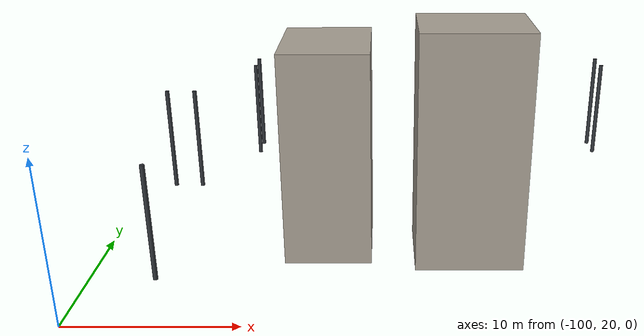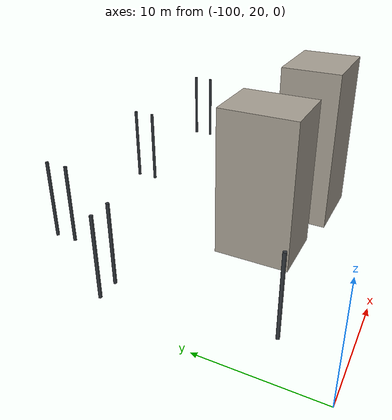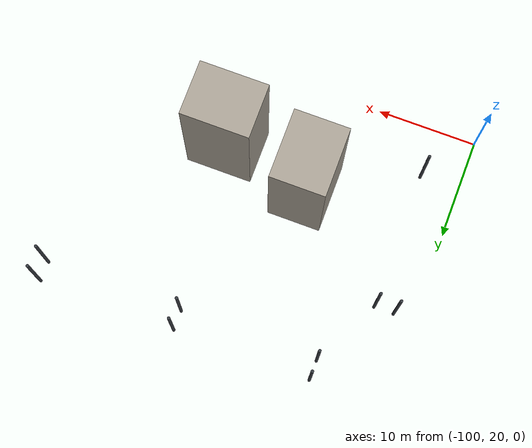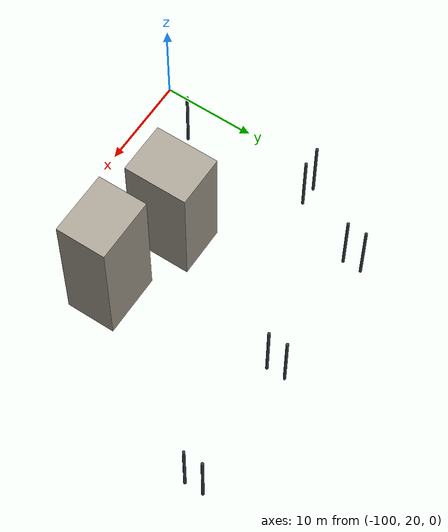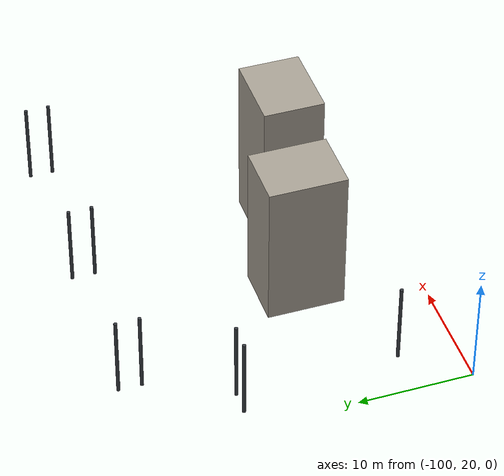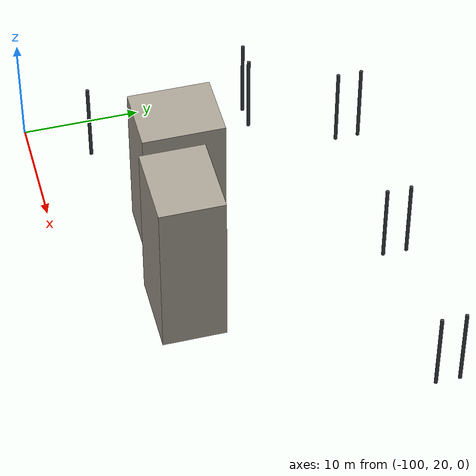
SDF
<sdf version="1.5">
 <world name="robocup_training_city_full_s7">
  <model name="building_1759">
   <static>true</static>
   <pose>-85.654073 30.366753 0 0 0 0</pose>
   <link name="link">
    <pose>0 0 6.721108 0 0 0</pose>
    <collision name="collision">
     <geometry><box><size>5.421987 6.764938 13.442216</size></box></geometry>
     <surface><friction><ode><mu>1</mu><mu2>1</mu2></ode></friction></surface>
    </collision>
    <visual name="visual">
     <geometry><box><size>5.421987 6.764938 13.442216</size></box></geometry>
     <material>
      <ambient>0.297 0.2835 0.261 1</ambient>
      <diffuse>0.66 0.63 0.58 1</diffuse>
      <specular>0.04 0.04 0.04 1</specular>
      <emissive>0 0 0 1</emissive>
     </material>
    </visual>
    <inertial>
     <mass>1</mass>
     <inertia>
      <ixx>18.871463</ixx>
      <ixy>0</ixy>
      <ixz>0</ixz>
      <iyy>17.507593</iyy>
      <iyz>0</iyz>
      <izz>6.263527</izz>
     </inertia>
    </inertial>
   </link>
  </model>
  <model name="building_1816">
   <static>true</static>
   <pose>-76.895274 28.776513 0 0 0 0</pose>
   <link name="link">
    <pose>0 0 7.425723 0 0 0</pose>
    <collision name="collision">
     <geometry><box><size>6.668007 5.290109 14.851446</size></box></geometry>
     <surface><friction><ode><mu>1</mu><mu2>1</mu2></ode></friction></surface>
    </collision>
    <visual name="visual">
     <geometry><box><size>6.668007 5.290109 14.851446</size></box></geometry>
     <material>
      <ambient>0.297 0.2835 0.261 1</ambient>
      <diffuse>0.66 0.63 0.58 1</diffuse>
      <specular>0.04 0.04 0.04 1</specular>
      <emissive>0 0 0 1</emissive>
     </material>
    </visual>
    <inertial>
     <mass>1</mass>
     <inertia>
      <ixx>20.712558</ixx>
      <ixy>0</ixy>
      <ixz>0</ixz>
      <iyy>22.085647</iyy>
      <iyz>0</iyz>
      <izz>6.037298</izz>
     </inertia>
    </inertial>
   </link>
  </model>
  <model name="lamp_post_2514">
   <static>true</static>
   <pose>-96 25.074647 0 0 0 0</pose>
   <link name="link">
    <pose>0 0 3.75 0 0 0</pose>
    <collision name="collision">
     <geometry><cylinder><radius>0.15</radius><length>7.5</length></cylinder></geometry>
     <surface><friction><ode><mu>1</mu><mu2>1</mu2></ode></friction></surface>
    </collision>
    <visual name="visual">
     <geometry><cylinder><radius>0.15</radius><length>7.5</length></cylinder></geometry>
     <material>
      <ambient>0.09 0.099 0.108 1</ambient>
      <diffuse>0.2 0.22 0.24 1</diffuse>
      <specular>0.04 0.04 0.04 1</specular>
      <emissive>0 0 0 1</emissive>
     </material>
    </visual>
    <inertial>
     <mass>1</mass>
     <inertia>
      <ixx>4.693125</ixx>
      <ixy>0</ixy>
      <ixz>0</ixz>
      <iyy>4.693125</iyy>
      <iyz>0</iyz>
      <izz>0.01125</izz>
     </inertia>
    </inertial>
   </link>
  </model>
  <model name="lamp_post_2515">
   <static>true</static>
   <pose>-98 39.074647 0 0 0 0</pose>
   <link name="link">
    <pose>0 0 3.75 0 0 0</pose>
    <collision name="collision">
     <geometry><cylinder><radius>0.15</radius><length>7.5</length></cylinder></geometry>
     <surface><friction><ode><mu>1</mu><mu2>1</mu2></ode></friction></surface>
    </collision>
    <visual name="visual">
     <geometry><cylinder><radius>0.15</radius><length>7.5</length></cylinder></geometry>
     <material>
      <ambient>0.09 0.099 0.108 1</ambient>
      <diffuse>0.2 0.22 0.24 1</diffuse>
      <specular>0.04 0.04 0.04 1</specular>
      <emissive>0 0 0 1</emissive>
     </material>
    </visual>
    <inertial>
     <mass>1</mass>
     <inertia>
      <ixx>4.693125</ixx>
      <ixy>0</ixy>
      <ixz>0</ixz>
      <iyy>4.693125</iyy>
      <iyz>0</iyz>
      <izz>0.01125</izz>
     </inertia>
    </inertial>
   </link>
  </model>
  <model name="lamp_post_2516">
   <static>true</static>
   <pose>-96 39.074647 0 0 0 0</pose>
   <link name="link">
    <pose>0 0 3.75 0 0 0</pose>
    <collision name="collision">
     <geometry><cylinder><radius>0.15</radius><length>7.5</length></cylinder></geometry>
     <surface><friction><ode><mu>1</mu><mu2>1</mu2></ode></friction></surface>
    </collision>
    <visual name="visual">
     <geometry><cylinder><radius>0.15</radius><length>7.5</length></cylinder></geometry>
     <material>
      <ambient>0.09 0.099 0.108 1</ambient>
      <diffuse>0.2 0.22 0.24 1</diffuse>
      <specular>0.04 0.04 0.04 1</specular>
      <emissive>0 0 0 1</emissive>
     </material>
    </visual>
    <inertial>
     <mass>1</mass>
     <inertia>
      <ixx>4.693125</ixx>
      <ixy>0</ixy>
      <ixz>0</ixz>
      <iyy>4.693125</iyy>
      <iyz>0</iyz>
      <izz>0.01125</izz>
     </inertia>
    </inertial>
   </link>
  </model>
  <model name="lamp_post_2661">
   <static>true</static>
   <pose>-92.511826 46 0 0 0 0</pose>
   <link name="link">
    <pose>0 0 3.75 0 0 0</pose>
    <collision name="collision">
     <geometry><cylinder><radius>0.15</radius><length>7.5</length></cylinder></geometry>
     <surface><friction><ode><mu>1</mu><mu2>1</mu2></ode></friction></surface>
    </collision>
    <visual name="visual">
     <geometry><cylinder><radius>0.15</radius><length>7.5</length></cylinder></geometry>
     <material>
      <ambient>0.09 0.099 0.108 1</ambient>
      <diffuse>0.2 0.22 0.24 1</diffuse>
      <specular>0.04 0.04 0.04 1</specular>
      <emissive>0 0 0 1</emissive>
     </material>
    </visual>
    <inertial>
     <mass>1</mass>
     <inertia>
      <ixx>4.693125</ixx>
      <ixy>0</ixy>
      <ixz>0</ixz>
      <iyy>4.693125</iyy>
      <iyz>0</iyz>
      <izz>0.01125</izz>
     </inertia>
    </inertial>
   </link>
  </model>
  <model name="lamp_post_2662">
   <static>true</static>
   <pose>-92.511826 48 0 0 0 0</pose>
   <link name="link">
    <pose>0 0 3.75 0 0 0</pose>
    <collision name="collision">
     <geometry><cylinder><radius>0.15</radius><length>7.5</length></cylinder></geometry>
     <surface><friction><ode><mu>1</mu><mu2>1</mu2></ode></friction></surface>
    </collision>
    <visual name="visual">
     <geometry><cylinder><radius>0.15</radius><length>7.5</length></cylinder></geometry>
     <material>
      <ambient>0.09 0.099 0.108 1</ambient>
      <diffuse>0.2 0.22 0.24 1</diffuse>
      <specular>0.04 0.04 0.04 1</specular>
      <emissive>0 0 0 1</emissive>
     </material>
    </visual>
    <inertial>
     <mass>1</mass>
     <inertia>
      <ixx>4.693125</ixx>
      <ixy>0</ixy>
      <ixz>0</ixz>
      <iyy>4.693125</iyy>
      <iyz>0</iyz>
      <izz>0.01125</izz>
     </inertia>
    </inertial>
   </link>
  </model>
  <model name="lamp_post_2663">
   <static>true</static>
   <pose>-78.511826 46 0 0 0 0</pose>
   <link name="link">
    <pose>0 0 3.75 0 0 0</pose>
    <collision name="collision">
     <geometry><cylinder><radius>0.15</radius><length>7.5</length></cylinder></geometry>
     <surface><friction><ode><mu>1</mu><mu2>1</mu2></ode></friction></surface>
    </collision>
    <visual name="visual">
     <geometry><cylinder><radius>0.15</radius><length>7.5</length></cylinder></geometry>
     <material>
      <ambient>0.09 0.099 0.108 1</ambient>
      <diffuse>0.2 0.22 0.24 1</diffuse>
      <specular>0.04 0.04 0.04 1</specular>
      <emissive>0 0 0 1</emissive>
     </material>
    </visual>
    <inertial>
     <mass>1</mass>
     <inertia>
      <ixx>4.693125</ixx>
      <ixy>0</ixy>
      <ixz>0</ixz>
      <iyy>4.693125</iyy>
      <iyz>0</iyz>
      <izz>0.01125</izz>
     </inertia>
    </inertial>
   </link>
  </model>
  <model name="lamp_post_2664">
   <static>true</static>
   <pose>-78.511826 48 0 0 0 0</pose>
   <link name="link">
    <pose>0 0 3.75 0 0 0</pose>
    <collision name="collision">
     <geometry><cylinder><radius>0.15</radius><length>7.5</length></cylinder></geometry>
     <surface><friction><ode><mu>1</mu><mu2>1</mu2></ode></friction></surface>
    </collision>
    <visual name="visual">
     <geometry><cylinder><radius>0.15</radius><length>7.5</length></cylinder></geometry>
     <material>
      <ambient>0.09 0.099 0.108 1</ambient>
      <diffuse>0.2 0.22 0.24 1</diffuse>
      <specular>0.04 0.04 0.04 1</specular>
      <emissive>0 0 0 1</emissive>
     </material>
    </visual>
    <inertial>
     <mass>1</mass>
     <inertia>
      <ixx>4.693125</ixx>
      <ixy>0</ixy>
      <ixz>0</ixz>
      <iyy>4.693125</iyy>
      <iyz>0</iyz>
      <izz>0.01125</izz>
     </inertia>
    </inertial>
   </link>
  </model>
  <model name="lamp_post_2665">
   <static>true</static>
   <pose>-64.511826 46 0 0 0 0</pose>
   <link name="link">
    <pose>0 0 3.75 0 0 0</pose>
    <collision name="collision">
     <geometry><cylinder><radius>0.15</radius><length>7.5</length></cylinder></geometry>
     <surface><friction><ode><mu>1</mu><mu2>1</mu2></ode></friction></surface>
    </collision>
    <visual name="visual">
     <geometry><cylinder><radius>0.15</radius><length>7.5</length></cylinder></geometry>
     <material>
      <ambient>0.09 0.099 0.108 1</ambient>
      <diffuse>0.2 0.22 0.24 1</diffuse>
      <specular>0.04 0.04 0.04 1</specular>
      <emissive>0 0 0 1</emissive>
     </material>
    </visual>
    <inertial>
     <mass>1</mass>
     <inertia>
      <ixx>4.693125</ixx>
      <ixy>0</ixy>
      <ixz>0</ixz>
      <iyy>4.693125</iyy>
      <iyz>0</iyz>
      <izz>0.01125</izz>
     </inertia>
    </inertial>
   </link>
  </model>
  <model name="lamp_post_2666">
   <static>true</static>
   <pose>-64.511826 48 0 0 0 0</pose>
   <link name="link">
    <pose>0 0 3.75 0 0 0</pose>
    <collision name="collision">
     <geometry><cylinder><radius>0.15</radius><length>7.5</length></cylinder></geometry>
     <surface><friction><ode><mu>1</mu><mu2>1</mu2></ode></friction></surface>
    </collision>
    <visual name="visual">
     <geometry><cylinder><radius>0.15</radius><length>7.5</length></cylinder></geometry>
     <material>
      <ambient>0.09 0.099 0.108 1</ambient>
      <diffuse>0.2 0.22 0.24 1</diffuse>
      <specular>0.04 0.04 0.04 1</specular>
      <emissive>0 0 0 1</emissive>
     </material>
    </visual>
    <inertial>
     <mass>1</mass>
     <inertia>
      <ixx>4.693125</ixx>
      <ixy>0</ixy>
      <ixz>0</ixz>
      <iyy>4.693125</iyy>
      <iyz>0</iyz>
      <izz>0.01125</izz>
     </inertia>
    </inertial>
   </link>
  </model>
 </world>
</sdf>
